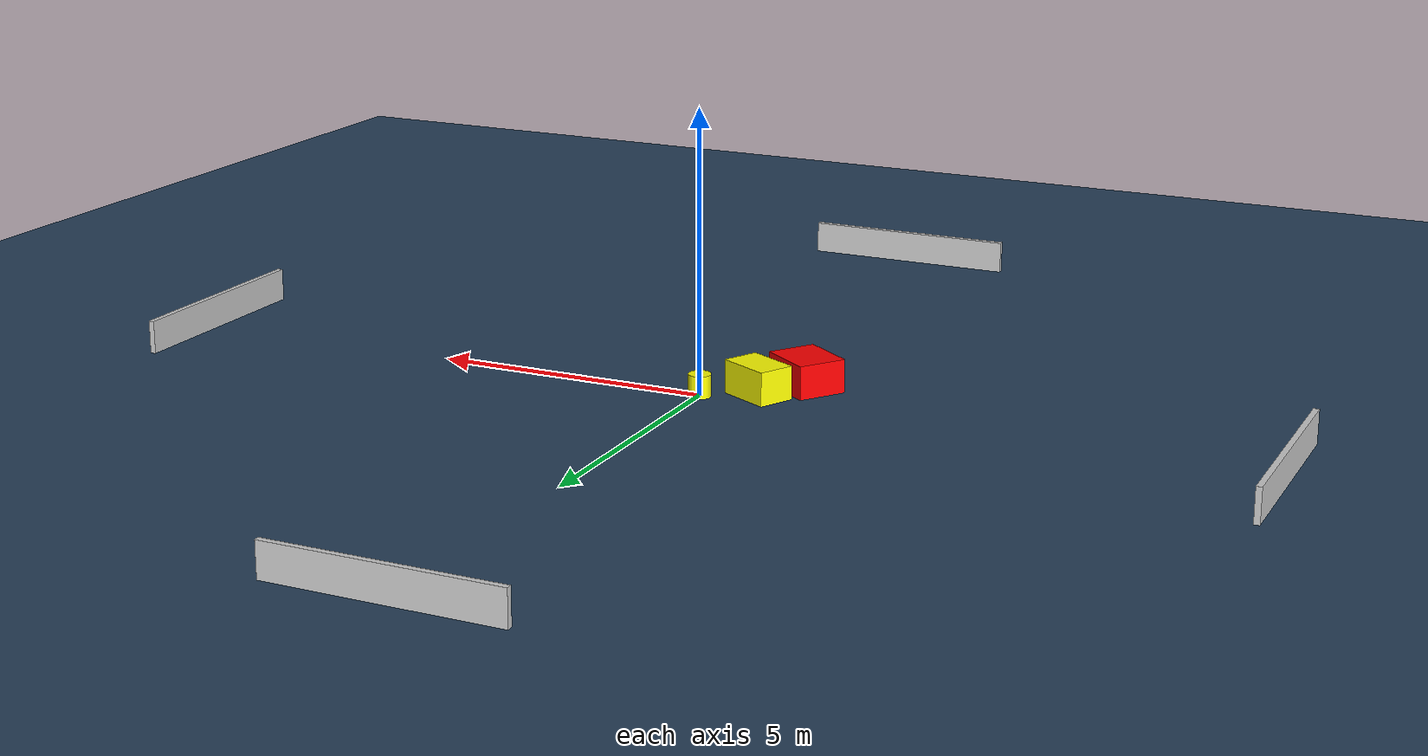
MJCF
<?xml version="1.0" ?>
<mujoco model="generated_environment">
  <option timestep="0.01" integrator="RK4" cone="elliptic"/>
  <default>
    <geom density="1"/>
  </default>
  <asset>
    <texture builtin="gradient" height="3072" name="skybox" rgb1="0.3 0.5 0.7" rgb2="0 0 0" type="skybox" width="512"/>
    <texture builtin="checker" height="300" name="groundplane" rgb1="0.2 0.3 0.4" rgb2="0.1 0.2 0.3" type="2d" width="300"/>
    <material name="groundplane" reflectance="0.2" texrepeat="5 5" texture="groundplane"/>
  </asset>
  <worldbody>
    <light dir="0 0 -1" directional="true" pos="0 0 1.5"/>
    <geom condim="3" friction="0.5 0.005 0.001" material="groundplane" name="floor" pos="0 0 0" size="0 0 0.05" type="plane"/>
    <body name="walls">
      <geom name="wall_1" condim="4" pos="-10.0 0.0 0.3" rgba="0.800000011920929 0.800000011920929 0.800000011920929 1.0" size="0.05 2.0 0.3" type="box"/>
      <geom name="wall_2" condim="4" pos="10.0 0.0 0.3" rgba="0.800000011920929 0.800000011920929 0.800000011920929 1.0" size="0.05 2.0 0.3" type="box"/>
      <geom name="wall_3" condim="4" pos="0.0 -10.0 0.3" rgba="0.800000011920929 0.800000011920929 0.800000011920929 1.0" size="2.0 0.05 0.3" type="box"/>
      <geom name="wall_4" condim="4" pos="0.0 10.0 0.3" rgba="0.800000011920929 0.800000011920929 0.800000011920929 1.0" size="2.0 0.05 0.3" type="box"/>
    </body>
    <body name="robot">
      <joint name="joint_x" type="slide" pos="0 0 0" axis="1 0 0"/>
      <joint name="joint_y" type="slide" pos="0 0 0" axis="0 1 0"/>
      <geom name="robot" type="cylinder" pos="0.0 0.0 0.2" size="0.2 0.2 0.0" mass="5.0" friction="1.0 0.005 0.0001" condim="4" rgba="1.0 1.0 0.0 1.0"/>
    </body>
    <body name="obstacle_1_movable">
      <geom name="obstacle_1_movable" condim="4" pos="-0.9034899406631137 -0.41691795292833145 0.3" euler="0 0 152.77937725339473" friction="0.0 0.005 0.001" rgba="1.0 1.0 0.0 1.0" size="0.49129631366617244 0.3328101736286588 0.3" type="box" mass="0.1"/>
      <joint type="free"/>
    </body>
    <body name="obstacle_2_static">
      <geom name="obstacle_2_static" condim="4" pos="-1.4854931505839835 -1.1581165428020697 0.3" euler="0 0 54.63986500565186" friction="0.0 0.005 0.001" rgba="1.0 0.0 0.0 1.0" size="0.44313166170845236 0.5115103409842939 0.3" type="box"/>
    </body>
  </worldbody>
  <actuator>
    <motor name="actuator_x" joint="joint_x" gear="1" ctrlrange="-1 1"/>
    <motor name="actuator_y" joint="joint_y" gear="1" ctrlrange="-1 1"/>
  </actuator>
</mujoco>
